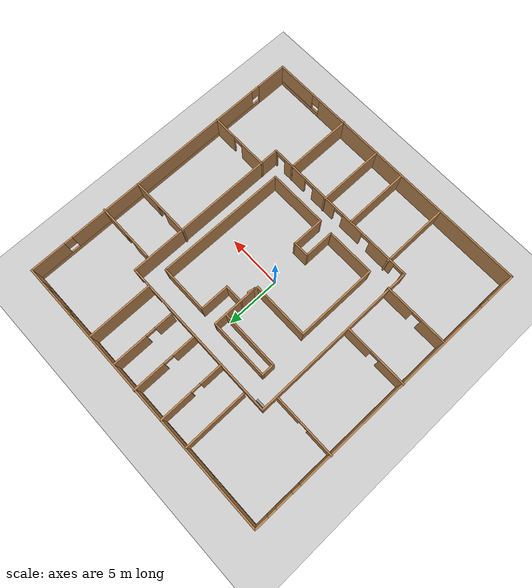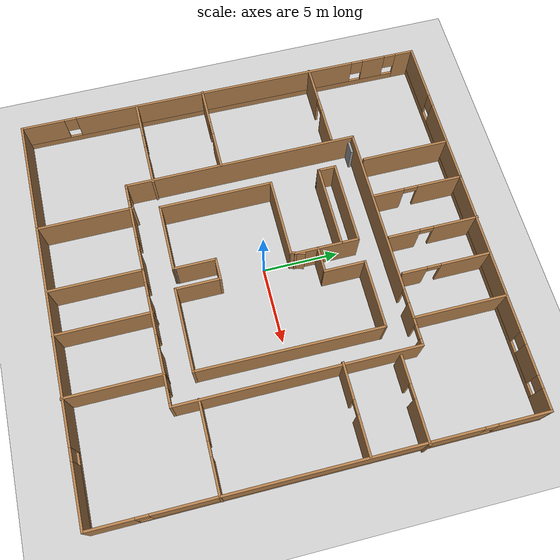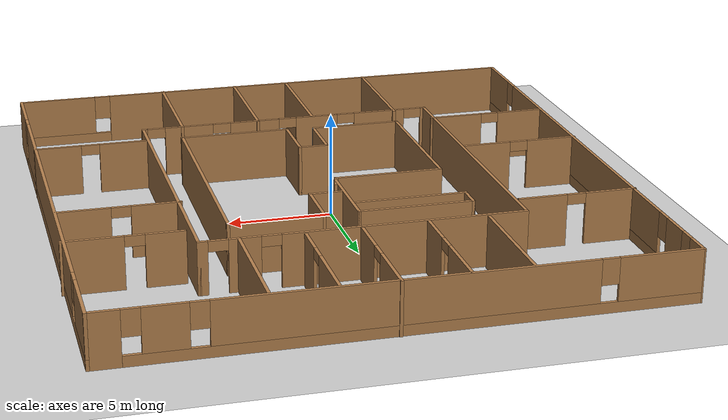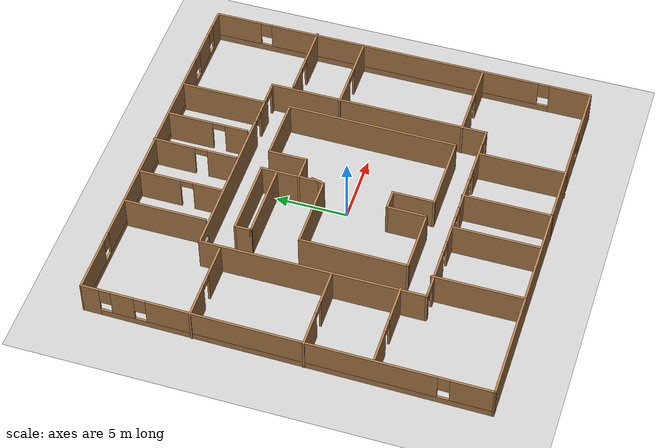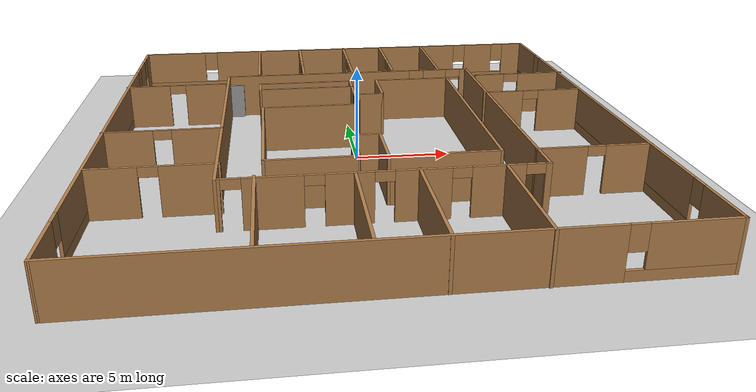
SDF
<sdf version="1.6">
 <world name="default">
  <light name="sun" type="directional">
   <pose>0 0 10 0 -0 0</pose>
   <diffuse>0.8 0.8 0.8 1</diffuse>
   <specular>0.1 0.1 0.1 1</specular>
   <attenuation>
    <range>1000</range>
    <constant>0.9</constant>
    <linear>0.01</linear>
    <quadratic>0.001</quadratic>
   </attenuation>
   <direction>-0.5 0.5 -1</direction>
  </light>
  <model name="ground_plane">
   <static>1</static>
   <link name="link">
    <collision name="collision">
     <geometry><plane><normal>0 0 1</normal><size>100 100</size></plane></geometry>
     <surface><friction><ode><mu>100</mu><mu2>50</mu2></ode></friction></surface>
    </collision>
    <visual name="visual">
     <cast_shadows>0</cast_shadows>
     <geometry><plane><normal>0 0 1</normal><size>100 100</size></plane></geometry>
     <material>
      <script><uri>file://media/materials/scripts/gazebo.material</uri><name>Gazebo/Grey</name></script>
     </material>
    </visual>
   </link>
  </model>
  <gravity>0 0 -9.8</gravity>
  <magnetic_field>6e-06 2.3e-05 -4.2e-05</magnetic_field>
  <atmosphere type="adiabatic"/>
  <physics name="default_physics" default="0" type="ode">
   <max_step_size>0.001</max_step_size>
   <real_time_factor>1</real_time_factor>
   <real_time_update_rate>1000</real_time_update_rate>
  </physics>
  <scene><ambient>0.4 0.4 0.4 1</ambient><background>0.7 0.7 0.7 1</background><shadows>1</shadows></scene>
  <spherical_coordinates>
   <surface_model>EARTH_WGS84</surface_model>
   <latitude_deg>0</latitude_deg>
   <longitude_deg>0</longitude_deg>
   <elevation>0</elevation>
   <heading_deg>0</heading_deg>
  </spherical_coordinates>
  <model name="5FloorOfNorthTower">
   <pose>0.315835 0.158332 0 0 -0 0</pose>
   <link name="Door_15">
    <collision name="Door_15_Collision">
     <geometry><box><size>0.9 0.17 2</size></box></geometry>
     <pose>0 0 1 0 -0 0</pose>
    </collision>
    <visual name="Door_15_Visual">
     <pose>0 0 1 0 -0 0</pose>
     <geometry><box><size>0.9 0.17 2</size></box></geometry>
     <material>
      <script><uri>file://media/materials/scripts/gazebo.material</uri><name>Gazebo/Grey</name></script>
     </material>
    </visual>
    <pose>-6.86912 7.45833 0 0 -0 0</pose>
   </link>
   <link name="Wall_0">
    <pose>-0.05873 -13.674 0 0 -0 0</pose>
    <visual name="Wall_0_Visual_0">
     <pose>-2.37069 0 1.25 0 -0 0</pose>
     <geometry><box><size>21.7586 0.15 2.5</size></box></geometry>
     <material>
      <script><uri>file://media/materials/scripts/gazebo.material</uri><name>Gazebo/Wood</name></script>
      <ambient>1 1 1 1</ambient>
     </material>
    </visual>
    <collision name="Wall_0_Collision_0">
     <geometry><box><size>21.7586 0.15 2.5</size></box></geometry>
     <pose>-2.37069 0 1.25 0 -0 0</pose>
    </collision>
    <visual name="Wall_0_Visual_1">
     <pose>10.8793 0 0.25 0 -0 0</pose>
     <geometry><box><size>4.74139 0.15 0.5</size></box></geometry>
     <material>
      <script><uri>file://media/materials/scripts/gazebo.material</uri><name>Gazebo/Wood</name></script>
      <ambient>1 1 1 1</ambient>
     </material>
    </visual>
    <collision name="Wall_0_Collision_1">
     <geometry><box><size>4.74139 0.15 0.5</size></box></geometry>
     <pose>10.8793 0 0.25 0 -0 0</pose>
    </collision>
    <visual name="Wall_0_Visual_2">
     <pose>11.2793 0 1.5 0 -0 0</pose>
     <geometry><box><size>3.94139 0.15 2</size></box></geometry>
     <material>
      <script><uri>file://media/materials/scripts/gazebo.material</uri><name>Gazebo/Wood</name></script>
      <ambient>1 1 1 1</ambient>
     </material>
    </visual>
    <collision name="Wall_0_Collision_2">
     <geometry><box><size>3.94139 0.15 2</size></box></geometry>
     <pose>11.2793 0 1.5 0 -0 0</pose>
    </collision>
    <visual name="Wall_0_Visual_3">
     <pose>8.90861 0 1.9 0 -0 0</pose>
     <geometry><box><size>0.8 0.15 1.2</size></box></geometry>
     <material>
      <script><uri>file://media/materials/scripts/gazebo.material</uri><name>Gazebo/Wood</name></script>
      <ambient>1 1 1 1</ambient>
     </material>
    </visual>
    <collision name="Wall_0_Collision_3">
     <geometry><box><size>0.8 0.15 1.2</size></box></geometry>
     <pose>8.90861 0 1.9 0 -0 0</pose>
    </collision>
   </link>
   <link name="Wall_11">
    <collision name="Wall_11_Collision">
     <geometry><box><size>5.5 0.15 2.5</size></box></geometry>
     <pose>0 0 1.25 0 -0 0</pose>
    </collision>
    <visual name="Wall_11_Visual">
     <pose>0 0 1.25 0 -0 0</pose>
     <geometry><box><size>5.5 0.15 2.5</size></box></geometry>
     <material>
      <script><uri>file://media/materials/scripts/gazebo.material</uri><name>Gazebo/Wood</name></script>
      <ambient>1 1 1 1</ambient>
     </material>
    </visual>
    <pose>-2.71207 5.92426 0 0 -0 0</pose>
   </link>
   <link name="Wall_12">
    <collision name="Wall_12_Collision">
     <geometry><box><size>4.25 0.15 2.5</size></box></geometry>
     <pose>0 0 1.25 0 -0 0</pose>
    </collision>
    <visual name="Wall_12_Visual">
     <pose>0 0 1.25 0 -0 0</pose>
     <geometry><box><size>4.25 0.15 2.5</size></box></geometry>
     <material>
      <script><uri>file://media/materials/scripts/gazebo.material</uri><name>Gazebo/Wood</name></script>
      <ambient>1 1 1 1</ambient>
     </material>
    </visual>
    <pose>-0.037071 3.87426 0 0 0 -1.5708</pose>
   </link>
   <link name="Wall_14">
    <collision name="Wall_14_Collision">
     <geometry><box><size>1.25 0.15 2.5</size></box></geometry>
     <pose>0 0 1.25 0 -0 0</pose>
    </collision>
    <visual name="Wall_14_Visual">
     <pose>0 0 1.25 0 -0 0</pose>
     <geometry><box><size>1.25 0.15 2.5</size></box></geometry>
     <material>
      <script><uri>file://media/materials/scripts/gazebo.material</uri><name>Gazebo/Wood</name></script>
      <ambient>1 1 1 1</ambient>
     </material>
    </visual>
    <pose>-5.38707 5.37426 0 0 0 -1.5708</pose>
   </link>
   <link name="Wall_15">
    <collision name="Wall_15_Collision">
     <geometry><box><size>5.5 0.15 2.5</size></box></geometry>
     <pose>0 0 1.25 0 -0 0</pose>
    </collision>
    <visual name="Wall_15_Visual">
     <pose>0 0 1.25 0 -0 0</pose>
     <geometry><box><size>5.5 0.15 2.5</size></box></geometry>
     <material>
      <script><uri>file://media/materials/scripts/gazebo.material</uri><name>Gazebo/Wood</name></script>
      <ambient>1 1 1 1</ambient>
     </material>
    </visual>
    <pose>-2.71207 4.82426 0 0 -0 0</pose>
   </link>
   <link name="Wall_17">
    <collision name="Wall_17_Collision">
     <geometry><box><size>1.75 0.15 2.5</size></box></geometry>
     <pose>0 0 1.25 0 -0 0</pose>
    </collision>
    <visual name="Wall_17_Visual">
     <pose>0 0 1.25 0 -0 0</pose>
     <geometry><box><size>1.75 0.15 2.5</size></box></geometry>
     <material>
      <script><uri>file://media/materials/scripts/gazebo.material</uri><name>Gazebo/Wood</name></script>
      <ambient>1 1 1 1</ambient>
     </material>
    </visual>
    <pose>0.759569 3.29084 0 0 -0 0</pose>
   </link>
   <link name="Wall_18">
    <collision name="Wall_18_Collision">
     <geometry><box><size>2.75 0.15 2.5</size></box></geometry>
     <pose>0 0 1.25 0 -0 0</pose>
    </collision>
    <visual name="Wall_18_Visual">
     <pose>0 0 1.25 0 -0 0</pose>
     <geometry><box><size>2.75 0.15 2.5</size></box></geometry>
     <material>
      <script><uri>file://media/materials/scripts/gazebo.material</uri><name>Gazebo/Wood</name></script>
      <ambient>1 1 1 1</ambient>
     </material>
    </visual>
    <pose>1.55957 4.59084 0 0 -0 1.5708</pose>
   </link>
   <link name="Wall_19">
    <collision name="Wall_19_Collision">
     <geometry><box><size>4.5 0.15 2.5</size></box></geometry>
     <pose>0 0 1.25 0 -0 0</pose>
    </collision>
    <visual name="Wall_19_Visual">
     <pose>0 0 1.25 0 -0 0</pose>
     <geometry><box><size>4.5 0.15 2.5</size></box></geometry>
     <material>
      <script><uri>file://media/materials/scripts/gazebo.material</uri><name>Gazebo/Wood</name></script>
      <ambient>1 1 1 1</ambient>
     </material>
    </visual>
    <pose>3.73457 5.89084 0 0 -0 0</pose>
   </link>
   <link name="Wall_2">
    <pose>13.1163 0.001016 0 0 -0 1.5708</pose>
    <visual name="Wall_2_Visual_0">
     <pose>-12.2586 0 1.25 0 -0 0</pose>
     <geometry><box><size>2.98285 0.15 2.5</size></box></geometry>
     <material>
      <script><uri>file://media/materials/scripts/gazebo.material</uri><name>Gazebo/Wood</name></script>
      <ambient>1 1 1 1</ambient>
     </material>
    </visual>
    <collision name="Wall_2_Collision_0">
     <geometry><box><size>2.98285 0.15 2.5</size></box></geometry>
     <pose>-12.2586 0 1.25 0 -0 0</pose>
    </collision>
    <visual name="Wall_2_Visual_1">
     <pose>1.49143 0 0.25 0 -0 0</pose>
     <geometry><box><size>24.5172 0.15 0.5</size></box></geometry>
     <material>
      <script><uri>file://media/materials/scripts/gazebo.material</uri><name>Gazebo/Wood</name></script>
      <ambient>1 1 1 1</ambient>
     </material>
    </visual>
    <collision name="Wall_2_Collision_1">
     <geometry><box><size>24.5172 0.15 0.5</size></box></geometry>
     <pose>1.49143 0 0.25 0 -0 0</pose>
    </collision>
    <visual name="Wall_2_Visual_2">
     <pose>-0.175881 0 1.5 0 -0 0</pose>
     <geometry><box><size>19.5825 0.15 2</size></box></geometry>
     <material>
      <script><uri>file://media/materials/scripts/gazebo.material</uri><name>Gazebo/Wood</name></script>
      <ambient>1 1 1 1</ambient>
     </material>
    </visual>
    <collision name="Wall_2_Collision_2">
     <geometry><box><size>19.5825 0.15 2</size></box></geometry>
     <pose>-0.175881 0 1.5 0 -0 0</pose>
    </collision>
    <visual name="Wall_2_Visual_3">
     <pose>12.0827 0 1.5 0 -0 0</pose>
     <geometry><box><size>3.33461 0.15 2</size></box></geometry>
     <material>
      <script><uri>file://media/materials/scripts/gazebo.material</uri><name>Gazebo/Wood</name></script>
      <ambient>1 1 1 1</ambient>
     </material>
    </visual>
    <collision name="Wall_2_Collision_3">
     <geometry><box><size>3.33461 0.15 2</size></box></geometry>
     <pose>12.0827 0 1.5 0 -0 0</pose>
    </collision>
    <visual name="Wall_2_Visual_4">
     <pose>-10.3672 0 1.9 0 -0 0</pose>
     <geometry><box><size>0.8 0.15 1.2</size></box></geometry>
     <material>
      <script><uri>file://media/materials/scripts/gazebo.material</uri><name>Gazebo/Wood</name></script>
      <ambient>1 1 1 1</ambient>
     </material>
    </visual>
    <collision name="Wall_2_Collision_4">
     <geometry><box><size>0.8 0.15 1.2</size></box></geometry>
     <pose>-10.3672 0 1.9 0 -0 0</pose>
    </collision>
    <visual name="Wall_2_Visual_5">
     <pose>10.0154 0 1.9 0 -0 0</pose>
     <geometry><box><size>0.8 0.15 1.2</size></box></geometry>
     <material>
      <script><uri>file://media/materials/scripts/gazebo.material</uri><name>Gazebo/Wood</name></script>
      <ambient>1 1 1 1</ambient>
     </material>
    </visual>
    <collision name="Wall_2_Collision_5">
     <geometry><box><size>0.8 0.15 1.2</size></box></geometry>
     <pose>10.0154 0 1.9 0 -0 0</pose>
    </collision>
   </link>
   <link name="Wall_20">
    <collision name="Wall_20_Collision">
     <geometry><box><size>12.0011 0.15 2.5</size></box></geometry>
     <pose>0 0 1.25 0 -0 0</pose>
    </collision>
    <visual name="Wall_20_Visual">
     <pose>0 0 1.25 0 -0 0</pose>
     <geometry><box><size>12.0011 0.15 2.5</size></box></geometry>
     <material>
      <script><uri>file://media/materials/scripts/gazebo.material</uri><name>Gazebo/Wood</name></script>
      <ambient>1 1 1 1</ambient>
     </material>
    </visual>
    <pose>5.86957 -0.034162 0 0 0 -1.57755</pose>
   </link>
   <link name="Wall_22">
    <collision name="Wall_22_Collision">
     <geometry><box><size>5.5 0.15 2.5</size></box></geometry>
     <pose>0 0 1.25 0 -0 0</pose>
    </collision>
    <visual name="Wall_22_Visual">
     <pose>0 0 1.25 0 -0 0</pose>
     <geometry><box><size>5.5 0.15 2.5</size></box></geometry>
     <material>
      <script><uri>file://media/materials/scripts/gazebo.material</uri><name>Gazebo/Wood</name></script>
      <ambient>1 1 1 1</ambient>
     </material>
    </visual>
    <pose>3.16457 -5.95916 0 0 -0 3.14159</pose>
   </link>
   <link name="Wall_24">
    <collision name="Wall_24_Collision">
     <geometry><box><size>3 0.15 2.5</size></box></geometry>
     <pose>0 0 1.25 0 -0 0</pose>
    </collision>
    <visual name="Wall_24_Visual">
     <pose>0 0 1.25 0 -0 0</pose>
     <geometry><box><size>3 0.15 2.5</size></box></geometry>
     <material>
      <script><uri>file://media/materials/scripts/gazebo.material</uri><name>Gazebo/Wood</name></script>
      <ambient>1 1 1 1</ambient>
     </material>
    </visual>
    <pose>0.489569 -4.53416 0 0 -0 1.5708</pose>
   </link>
   <link name="Wall_25">
    <collision name="Wall_25_Collision">
     <geometry><box><size>1.5 0.15 2.5</size></box></geometry>
     <pose>0 0 1.25 0 -0 0</pose>
    </collision>
    <visual name="Wall_25_Visual">
     <pose>0 0 1.25 0 -0 0</pose>
     <geometry><box><size>1.5 0.15 2.5</size></box></geometry>
     <material>
      <script><uri>file://media/materials/scripts/gazebo.material</uri><name>Gazebo/Wood</name></script>
      <ambient>1 1 1 1</ambient>
     </material>
    </visual>
    <pose>-0.185431 -3.10916 0 0 -0 3.14159</pose>
   </link>
   <link name="Wall_26">
    <collision name="Wall_26_Collision">
     <geometry><box><size>2.75 0.15 2.5</size></box></geometry>
     <pose>0 0 1.25 0 -0 0</pose>
    </collision>
    <visual name="Wall_26_Visual">
     <pose>0 0 1.25 0 -0 0</pose>
     <geometry><box><size>2.75 0.15 2.5</size></box></geometry>
     <material>
      <script><uri>file://media/materials/scripts/gazebo.material</uri><name>Gazebo/Wood</name></script>
      <ambient>1 1 1 1</ambient>
     </material>
    </visual>
    <pose>-0.860431 -4.40916 0 0 0 -1.5708</pose>
   </link>
   <link name="Wall_27">
    <collision name="Wall_27_Collision">
     <geometry><box><size>0.25 0.15 2.5</size></box></geometry>
     <pose>0 0 1.25 0 -0 0</pose>
    </collision>
    <visual name="Wall_27_Visual">
     <pose>0 0 1.25 0 -0 0</pose>
     <geometry><box><size>0.25 0.15 2.5</size></box></geometry>
     <material>
      <script><uri>file://media/materials/scripts/gazebo.material</uri><name>Gazebo/Grey</name></script>
      <ambient>1 1 1 1</ambient>
     </material>
    </visual>
    <pose>-0.873372 -5.75746 0 0 0 -1.8326</pose>
   </link>
   <link name="Wall_28">
    <collision name="Wall_28_Collision">
     <geometry><box><size>4.5 0.15 2.5</size></box></geometry>
     <pose>0 0 1.25 0 -0 0</pose>
    </collision>
    <visual name="Wall_28_Visual">
     <pose>0 0 1.25 0 -0 0</pose>
     <geometry><box><size>4.5 0.15 2.5</size></box></geometry>
     <material>
      <script><uri>file://media/materials/scripts/gazebo.material</uri><name>Gazebo/Wood</name></script>
      <ambient>1 1 1 1</ambient>
     </material>
    </visual>
    <pose>-3.06131 -5.80576 0 0 -0 3.14159</pose>
   </link>
   <link name="Wall_29">
    <collision name="Wall_29_Collision">
     <geometry><box><size>7.5 0.15 2.5</size></box></geometry>
     <pose>0 0 1.25 0 -0 0</pose>
    </collision>
    <visual name="Wall_29_Visual">
     <pose>0 0 1.25 0 -0 0</pose>
     <geometry><box><size>7.5 0.15 2.5</size></box></geometry>
     <material>
      <script><uri>file://media/materials/scripts/gazebo.material</uri><name>Gazebo/Wood</name></script>
      <ambient>1 1 1 1</ambient>
     </material>
    </visual>
    <pose>-5.23631 -2.13076 0 0 -0 1.5708</pose>
   </link>
   <link name="Wall_3">
    <pose>0.06627 13.676 0 0 -0 3.14159</pose>
    <visual name="Wall_3_Visual_0">
     <pose>-12.4029 0 1.25 0 -0 0</pose>
     <geometry><box><size>1.44419 0.15 2.5</size></box></geometry>
     <material>
      <script><uri>file://media/materials/scripts/gazebo.material</uri><name>Gazebo/Wood</name></script>
      <ambient>1 1 1 1</ambient>
     </material>
    </visual>
    <collision name="Wall_3_Collision_0">
     <geometry><box><size>1.44419 0.15 2.5</size></box></geometry>
     <pose>-12.4029 0 1.25 0 -0 0</pose>
    </collision>
    <visual name="Wall_3_Visual_1">
     <pose>0.722096 0 0.25 0 -0 0</pose>
     <geometry><box><size>24.8058 0.15 0.5</size></box></geometry>
     <material>
      <script><uri>file://media/materials/scripts/gazebo.material</uri><name>Gazebo/Wood</name></script>
      <ambient>1 1 1 1</ambient>
     </material>
    </visual>
    <collision name="Wall_3_Collision_1">
     <geometry><box><size>24.8058 0.15 0.5</size></box></geometry>
     <pose>0.722096 0 0.25 0 -0 0</pose>
    </collision>
    <visual name="Wall_3_Visual_2">
     <pose>-9.90835 0 1.5 0 -0 0</pose>
     <geometry><box><size>1.94491 0.15 2</size></box></geometry>
     <material>
      <script><uri>file://media/materials/scripts/gazebo.material</uri><name>Gazebo/Wood</name></script>
      <ambient>1 1 1 1</ambient>
     </material>
    </visual>
    <collision name="Wall_3_Collision_2">
     <geometry><box><size>1.94491 0.15 2</size></box></geometry>
     <pose>-9.90835 0 1.5 0 -0 0</pose>
    </collision>
    <visual name="Wall_3_Visual_3">
     <pose>0.153155 0 1.5 0 -0 0</pose>
     <geometry><box><size>16.5781 0.15 2</size></box></geometry>
     <material>
      <script><uri>file://media/materials/scripts/gazebo.material</uri><name>Gazebo/Wood</name></script>
      <ambient>1 1 1 1</ambient>
     </material>
    </visual>
    <collision name="Wall_3_Collision_3">
     <geometry><box><size>16.5781 0.15 2</size></box></geometry>
     <pose>0.153155 0 1.5 0 -0 0</pose>
    </collision>
    <visual name="Wall_3_Visual_4">
     <pose>11.1836 0 1.5 0 -0 0</pose>
     <geometry><box><size>3.88279 0.15 2</size></box></geometry>
     <material>
      <script><uri>file://media/materials/scripts/gazebo.material</uri><name>Gazebo/Wood</name></script>
      <ambient>1 1 1 1</ambient>
     </material>
    </visual>
    <collision name="Wall_3_Collision_4">
     <geometry><box><size>3.88279 0.15 2</size></box></geometry>
     <pose>11.1836 0 1.5 0 -0 0</pose>
    </collision>
    <visual name="Wall_3_Visual_5">
     <pose>-11.2808 0 1.9 0 -0 0</pose>
     <geometry><box><size>0.8 0.15 1.2</size></box></geometry>
     <material>
      <script><uri>file://media/materials/scripts/gazebo.material</uri><name>Gazebo/Wood</name></script>
      <ambient>1 1 1 1</ambient>
     </material>
    </visual>
    <collision name="Wall_3_Collision_5">
     <geometry><box><size>0.8 0.15 1.2</size></box></geometry>
     <pose>-11.2808 0 1.9 0 -0 0</pose>
    </collision>
    <visual name="Wall_3_Visual_6">
     <pose>-8.5359 0 1.9 0 -0 0</pose>
     <geometry><box><size>0.8 0.15 1.2</size></box></geometry>
     <material>
      <script><uri>file://media/materials/scripts/gazebo.material</uri><name>Gazebo/Wood</name></script>
      <ambient>1 1 1 1</ambient>
     </material>
    </visual>
    <collision name="Wall_3_Collision_6">
     <geometry><box><size>0.8 0.15 1.2</size></box></geometry>
     <pose>-8.5359 0 1.9 0 -0 0</pose>
    </collision>
    <visual name="Wall_3_Visual_7">
     <pose>8.84221 0 1.9 0 -0 0</pose>
     <geometry><box><size>0.8 0.15 1.2</size></box></geometry>
     <material>
      <script><uri>file://media/materials/scripts/gazebo.material</uri><name>Gazebo/Wood</name></script>
      <ambient>1 1 1 1</ambient>
     </material>
    </visual>
    <collision name="Wall_3_Collision_7">
     <geometry><box><size>0.8 0.15 1.2</size></box></geometry>
     <pose>8.84221 0 1.9 0 -0 0</pose>
    </collision>
   </link>
   <link name="Wall_30">
    <collision name="Wall_30_Collision">
     <geometry><box><size>5.25 0.15 2.5</size></box></geometry>
     <pose>0 0 1.25 0 -0 0</pose>
    </collision>
    <visual name="Wall_30_Visual">
     <pose>0 0 1.25 0 -0 0</pose>
     <geometry><box><size>5.25 0.15 2.5</size></box></geometry>
     <material>
      <script><uri>file://media/materials/scripts/gazebo.material</uri><name>Gazebo/Wood</name></script>
      <ambient>1 1 1 1</ambient>
     </material>
    </visual>
    <pose>-2.68631 1.54425 0 0 -0 0</pose>
   </link>
   <link name="Wall_31">
    <collision name="Wall_31_Collision">
     <geometry><box><size>1 0.15 2.5</size></box></geometry>
     <pose>0 0 1.25 0 -0 0</pose>
    </collision>
    <visual name="Wall_31_Visual">
     <pose>0 0 1.25 0 -0 0</pose>
     <geometry><box><size>1 0.15 2.5</size></box></geometry>
     <material>
      <script><uri>file://media/materials/scripts/gazebo.material</uri><name>Gazebo/Wood</name></script>
      <ambient>1 1 1 1</ambient>
     </material>
    </visual>
    <pose>-0.026315 1.95476 0 0 -0 1.309</pose>
   </link>
   <link name="Wall_33">
    <pose>-10.3022 6.24599 0 0 -0 0</pose>
    <visual name="Wall_33_Visual_0">
     <pose>-1.63035 0 1.25 0 -0 0</pose>
     <geometry><box><size>2.48931 0.15 2.5</size></box></geometry>
     <material>
      <script><uri>file://media/materials/scripts/gazebo.material</uri><name>Gazebo/Wood</name></script>
      <ambient>1 1 1 1</ambient>
     </material>
    </visual>
    <collision name="Wall_33_Collision_0">
     <geometry><box><size>2.48931 0.15 2.5</size></box></geometry>
     <pose>-1.63035 0 1.25 0 -0 0</pose>
    </collision>
    <visual name="Wall_33_Visual_1">
     <pose>1.69465 0 1.25 0 -0 0</pose>
     <geometry><box><size>2.36069 0.15 2.5</size></box></geometry>
     <material>
      <script><uri>file://media/materials/scripts/gazebo.material</uri><name>Gazebo/Wood</name></script>
      <ambient>1 1 1 1</ambient>
     </material>
    </visual>
    <collision name="Wall_33_Collision_1">
     <geometry><box><size>2.36069 0.15 2.5</size></box></geometry>
     <pose>1.69465 0 1.25 0 -0 0</pose>
    </collision>
    <visual name="Wall_33_Visual_2">
     <pose>0.064306 0 2.25 0 -0 0</pose>
     <geometry><box><size>0.9 0.15 0.5</size></box></geometry>
     <material>
      <script><uri>file://media/materials/scripts/gazebo.material</uri><name>Gazebo/Wood</name></script>
      <ambient>1 1 1 1</ambient>
     </material>
    </visual>
    <collision name="Wall_33_Collision_2">
     <geometry><box><size>0.9 0.15 0.5</size></box></geometry>
     <pose>0.064306 0 2.25 0 -0 0</pose>
    </collision>
   </link>
   <link name="Wall_35">
    <collision name="Wall_35_Collision">
     <geometry><box><size>5.75 0.15 2.5</size></box></geometry>
     <pose>0 0 1.25 0 -0 0</pose>
    </collision>
    <visual name="Wall_35_Visual">
     <pose>0 0 1.25 0 -0 0</pose>
     <geometry><box><size>5.75 0.15 2.5</size></box></geometry>
     <material>
      <script><uri>file://media/materials/scripts/gazebo.material</uri><name>Gazebo/Wood</name></script>
      <ambient>1 1 1 1</ambient>
     </material>
    </visual>
    <pose>-5.45606 10.7685 0 0 0 -1.5708</pose>
   </link>
   <link name="Wall_37">
    <pose>-2.70509 10.7244 0 0 0 -1.5708</pose>
    <visual name="Wall_37_Visual_0">
     <pose>-1.49563 0 1.25 0 -0 0</pose>
     <geometry><box><size>3.00875 0.15 2.5</size></box></geometry>
     <material>
      <script><uri>file://media/materials/scripts/gazebo.material</uri><name>Gazebo/Wood</name></script>
      <ambient>1 1 1 1</ambient>
     </material>
    </visual>
    <collision name="Wall_37_Collision_0">
     <geometry><box><size>3.00875 0.15 2.5</size></box></geometry>
     <pose>-1.49563 0 1.25 0 -0 0</pose>
    </collision>
    <visual name="Wall_37_Visual_1">
     <pose>1.95437 0 1.25 0 -0 0</pose>
     <geometry><box><size>2.09125 0.15 2.5</size></box></geometry>
     <material>
      <script><uri>file://media/materials/scripts/gazebo.material</uri><name>Gazebo/Wood</name></script>
      <ambient>1 1 1 1</ambient>
     </material>
    </visual>
    <collision name="Wall_37_Collision_1">
     <geometry><box><size>2.09125 0.15 2.5</size></box></geometry>
     <pose>1.95437 0 1.25 0 -0 0</pose>
    </collision>
    <visual name="Wall_37_Visual_2">
     <pose>0.458748 0 2.25 0 -0 0</pose>
     <geometry><box><size>0.9 0.15 0.5</size></box></geometry>
     <material>
      <script><uri>file://media/materials/scripts/gazebo.material</uri><name>Gazebo/Wood</name></script>
      <ambient>1 1 1 1</ambient>
     </material>
    </visual>
    <collision name="Wall_37_Collision_2">
     <geometry><box><size>0.9 0.15 0.5</size></box></geometry>
     <pose>0.458748 0 2.25 0 -0 0</pose>
    </collision>
   </link>
   <link name="Wall_39">
    <pose>0.329083 10.8053 0 0 0 -1.5708</pose>
    <visual name="Wall_39_Visual_0">
     <pose>-1.50196 0 1.25 0 -0 0</pose>
     <geometry><box><size>2.99608 0.15 2.5</size></box></geometry>
     <material>
      <script><uri>file://media/materials/scripts/gazebo.material</uri><name>Gazebo/Wood</name></script>
      <ambient>1 1 1 1</ambient>
     </material>
    </visual>
    <collision name="Wall_39_Collision_0">
     <geometry><box><size>2.99608 0.15 2.5</size></box></geometry>
     <pose>-1.50196 0 1.25 0 -0 0</pose>
    </collision>
    <visual name="Wall_39_Visual_1">
     <pose>1.94804 0 1.25 0 -0 0</pose>
     <geometry><box><size>2.10392 0.15 2.5</size></box></geometry>
     <material>
      <script><uri>file://media/materials/scripts/gazebo.material</uri><name>Gazebo/Wood</name></script>
      <ambient>1 1 1 1</ambient>
     </material>
    </visual>
    <collision name="Wall_39_Collision_1">
     <geometry><box><size>2.10392 0.15 2.5</size></box></geometry>
     <pose>1.94804 0 1.25 0 -0 0</pose>
    </collision>
    <visual name="Wall_39_Visual_2">
     <pose>0.446083 0 2.25 0 -0 0</pose>
     <geometry><box><size>0.9 0.15 0.5</size></box></geometry>
     <material>
      <script><uri>file://media/materials/scripts/gazebo.material</uri><name>Gazebo/Wood</name></script>
      <ambient>1 1 1 1</ambient>
     </material>
    </visual>
    <collision name="Wall_39_Collision_2">
     <geometry><box><size>0.9 0.15 0.5</size></box></geometry>
     <pose>0.446083 0 2.25 0 -0 0</pose>
    </collision>
   </link>
   <link name="Wall_4">
    <pose>-13.1087 0.001016 0 0 0 -1.57994</pose>
    <visual name="Wall_4_Visual_0">
     <pose>-13.1068 0 1.25 0 -0 0</pose>
     <geometry><box><size>1.2875 0.15 2.5</size></box></geometry>
     <material>
      <script><uri>file://media/materials/scripts/gazebo.material</uri><name>Gazebo/Wood</name></script>
      <ambient>1 1 1 1</ambient>
     </material>
    </visual>
    <collision name="Wall_4_Collision_0">
     <geometry><box><size>1.2875 0.15 2.5</size></box></geometry>
     <pose>-13.1068 0 1.25 0 -0 0</pose>
    </collision>
    <visual name="Wall_4_Visual_1">
     <pose>0.643751 0 0.25 0 -0 0</pose>
     <geometry><box><size>26.2136 0.15 0.5</size></box></geometry>
     <material>
      <script><uri>file://media/materials/scripts/gazebo.material</uri><name>Gazebo/Wood</name></script>
      <ambient>1 1 1 1</ambient>
     </material>
    </visual>
    <collision name="Wall_4_Collision_1">
     <geometry><box><size>26.2136 0.15 0.5</size></box></geometry>
     <pose>0.643751 0 0.25 0 -0 0</pose>
    </collision>
    <visual name="Wall_4_Visual_2">
     <pose>-10.8757 0 1.5 0 -0 0</pose>
     <geometry><box><size>1.57466 0.15 2</size></box></geometry>
     <material>
      <script><uri>file://media/materials/scripts/gazebo.material</uri><name>Gazebo/Wood</name></script>
      <ambient>1 1 1 1</ambient>
     </material>
    </visual>
    <collision name="Wall_4_Collision_2">
     <geometry><box><size>1.57466 0.15 2</size></box></geometry>
     <pose>-10.8757 0 1.5 0 -0 0</pose>
    </collision>
    <visual name="Wall_4_Visual_3">
     <pose>0.370791 0 1.5 0 -0 0</pose>
     <geometry><box><size>19.3184 0.15 2</size></box></geometry>
     <material>
      <script><uri>file://media/materials/scripts/gazebo.material</uri><name>Gazebo/Wood</name></script>
      <ambient>1 1 1 1</ambient>
     </material>
    </visual>
    <collision name="Wall_4_Collision_3">
     <geometry><box><size>19.3184 0.15 2</size></box></geometry>
     <pose>0.370791 0 1.5 0 -0 0</pose>
    </collision>
    <visual name="Wall_4_Visual_4">
     <pose>12.2903 0 1.5 0 -0 0</pose>
     <geometry><box><size>2.92058 0.15 2</size></box></geometry>
     <material>
      <script><uri>file://media/materials/scripts/gazebo.material</uri><name>Gazebo/Wood</name></script>
      <ambient>1 1 1 1</ambient>
     </material>
    </visual>
    <collision name="Wall_4_Collision_4">
     <geometry><box><size>2.92058 0.15 2</size></box></geometry>
     <pose>12.2903 0 1.5 0 -0 0</pose>
    </collision>
    <visual name="Wall_4_Visual_5">
     <pose>-12.0631 0 1.9 0 -0 0</pose>
     <geometry><box><size>0.8 0.15 1.2</size></box></geometry>
     <material>
      <script><uri>file://media/materials/scripts/gazebo.material</uri><name>Gazebo/Wood</name></script>
      <ambient>1 1 1 1</ambient>
     </material>
    </visual>
    <collision name="Wall_4_Collision_5">
     <geometry><box><size>0.8 0.15 1.2</size></box></geometry>
     <pose>-12.0631 0 1.9 0 -0 0</pose>
    </collision>
    <visual name="Wall_4_Visual_6">
     <pose>-9.68841 0 1.9 0 -0 0</pose>
     <geometry><box><size>0.8 0.15 1.2</size></box></geometry>
     <material>
      <script><uri>file://media/materials/scripts/gazebo.material</uri><name>Gazebo/Wood</name></script>
      <ambient>1 1 1 1</ambient>
     </material>
    </visual>
    <collision name="Wall_4_Collision_6">
     <geometry><box><size>0.8 0.15 1.2</size></box></geometry>
     <pose>-9.68841 0 1.9 0 -0 0</pose>
    </collision>
    <visual name="Wall_4_Visual_7">
     <pose>10.43 0 1.9 0 -0 0</pose>
     <geometry><box><size>0.8 0.15 1.2</size></box></geometry>
     <material>
      <script><uri>file://media/materials/scripts/gazebo.material</uri><name>Gazebo/Wood</name></script>
      <ambient>1 1 1 1</ambient>
     </material>
    </visual>
    <collision name="Wall_4_Collision_7">
     <geometry><box><size>0.8 0.15 1.2</size></box></geometry>
     <pose>10.43 0 1.9 0 -0 0</pose>
    </collision>
   </link>
   <link name="Wall_41">
    <pose>2.87778 10.7685 0 0 0 -1.5708</pose>
    <visual name="Wall_41_Visual_0">
     <pose>-1.27072 0 1.25 0 -0 0</pose>
     <geometry><box><size>3.20857 0.15 2.5</size></box></geometry>
     <material>
      <script><uri>file://media/materials/scripts/gazebo.material</uri><name>Gazebo/Wood</name></script>
      <ambient>1 1 1 1</ambient>
     </material>
    </visual>
    <collision name="Wall_41_Collision_0">
     <geometry><box><size>3.20857 0.15 2.5</size></box></geometry>
     <pose>-1.27072 0 1.25 0 -0 0</pose>
    </collision>
    <visual name="Wall_41_Visual_1">
     <pose>2.05428 0 1.25 0 -0 0</pose>
     <geometry><box><size>1.64143 0.15 2.5</size></box></geometry>
     <material>
      <script><uri>file://media/materials/scripts/gazebo.material</uri><name>Gazebo/Wood</name></script>
      <ambient>1 1 1 1</ambient>
     </material>
    </visual>
    <collision name="Wall_41_Collision_1">
     <geometry><box><size>1.64143 0.15 2.5</size></box></geometry>
     <pose>2.05428 0 1.25 0 -0 0</pose>
    </collision>
    <visual name="Wall_41_Visual_2">
     <pose>0.783566 0 2.25 0 -0 0</pose>
     <geometry><box><size>0.9 0.15 0.5</size></box></geometry>
     <material>
      <script><uri>file://media/materials/scripts/gazebo.material</uri><name>Gazebo/Wood</name></script>
      <ambient>1 1 1 1</ambient>
     </material>
    </visual>
    <collision name="Wall_41_Collision_2">
     <geometry><box><size>0.9 0.15 0.5</size></box></geometry>
     <pose>0.783566 0 2.25 0 -0 0</pose>
    </collision>
   </link>
   <link name="Wall_43">
    <collision name="Wall_43_Collision">
     <geometry><box><size>6 0.15 2.5</size></box></geometry>
     <pose>0 0 1.25 0 -0 0</pose>
    </collision>
    <visual name="Wall_43_Visual">
     <pose>0 0 1.25 0 -0 0</pose>
     <geometry><box><size>6 0.15 2.5</size></box></geometry>
     <material>
      <script><uri>file://media/materials/scripts/gazebo.material</uri><name>Gazebo/Wood</name></script>
      <ambient>1 1 1 1</ambient>
     </material>
    </visual>
    <pose>5.79059 10.6435 0 0 0 -1.5708</pose>
   </link>
   <link name="Wall_45">
    <pose>10.5594 6.24599 0 0 -0 3.14159</pose>
    <visual name="Wall_45_Visual_0">
     <pose>-1.35438 0 1.25 0 -0 0</pose>
     <geometry><box><size>2.79124 0.15 2.5</size></box></geometry>
     <material>
      <script><uri>file://media/materials/scripts/gazebo.material</uri><name>Gazebo/Wood</name></script>
      <ambient>1 1 1 1</ambient>
     </material>
    </visual>
    <collision name="Wall_45_Collision_0">
     <geometry><box><size>2.79124 0.15 2.5</size></box></geometry>
     <pose>-1.35438 0 1.25 0 -0 0</pose>
    </collision>
    <visual name="Wall_45_Visual_1">
     <pose>1.84562 0 1.25 0 -0 0</pose>
     <geometry><box><size>1.80876 0.15 2.5</size></box></geometry>
     <material>
      <script><uri>file://media/materials/scripts/gazebo.material</uri><name>Gazebo/Wood</name></script>
      <ambient>1 1 1 1</ambient>
     </material>
    </visual>
    <collision name="Wall_45_Collision_1">
     <geometry><box><size>1.80876 0.15 2.5</size></box></geometry>
     <pose>1.84562 0 1.25 0 -0 0</pose>
    </collision>
    <visual name="Wall_45_Visual_2">
     <pose>0.491238 0 2.25 0 -0 0</pose>
     <geometry><box><size>0.9 0.15 0.5</size></box></geometry>
     <material>
      <script><uri>file://media/materials/scripts/gazebo.material</uri><name>Gazebo/Wood</name></script>
      <ambient>1 1 1 1</ambient>
     </material>
    </visual>
    <collision name="Wall_45_Collision_2">
     <geometry><box><size>0.9 0.15 0.5</size></box></geometry>
     <pose>0.491238 0 2.25 0 -0 0</pose>
    </collision>
   </link>
   <link name="Wall_47">
    <pose>10.2493 2.76681 0 0 -0 0</pose>
    <visual name="Wall_47_Visual_0">
     <pose>-1.70626 0 1.25 0 -0 0</pose>
     <geometry><box><size>2.33749 0.15 2.5</size></box></geometry>
     <material>
      <script><uri>file://media/materials/scripts/gazebo.material</uri><name>Gazebo/Wood</name></script>
      <ambient>1 1 1 1</ambient>
     </material>
    </visual>
    <collision name="Wall_47_Collision_0">
     <geometry><box><size>2.33749 0.15 2.5</size></box></geometry>
     <pose>-1.70626 0 1.25 0 -0 0</pose>
    </collision>
    <visual name="Wall_47_Visual_1">
     <pose>1.61874 0 1.25 0 -0 0</pose>
     <geometry><box><size>2.51251 0.15 2.5</size></box></geometry>
     <material>
      <script><uri>file://media/materials/scripts/gazebo.material</uri><name>Gazebo/Wood</name></script>
      <ambient>1 1 1 1</ambient>
     </material>
    </visual>
    <collision name="Wall_47_Collision_1">
     <geometry><box><size>2.51251 0.15 2.5</size></box></geometry>
     <pose>1.61874 0 1.25 0 -0 0</pose>
    </collision>
    <visual name="Wall_47_Visual_2">
     <pose>-0.087513 0 2.25 0 -0 0</pose>
     <geometry><box><size>0.9 0.15 0.5</size></box></geometry>
     <material>
      <script><uri>file://media/materials/scripts/gazebo.material</uri><name>Gazebo/Wood</name></script>
      <ambient>1 1 1 1</ambient>
     </material>
    </visual>
    <collision name="Wall_47_Collision_2">
     <geometry><box><size>0.9 0.15 0.5</size></box></geometry>
     <pose>-0.087513 0 2.25 0 -0 0</pose>
    </collision>
   </link>
   <link name="Wall_49">
    <pose>10.3302 -5.97159 0 0 -0 0</pose>
    <visual name="Wall_49_Visual_0">
     <pose>-1.60635 0 1.25 0 -0 0</pose>
     <geometry><box><size>2.5373 0.15 2.5</size></box></geometry>
     <material>
      <script><uri>file://media/materials/scripts/gazebo.material</uri><name>Gazebo/Wood</name></script>
      <ambient>1 1 1 1</ambient>
     </material>
    </visual>
    <collision name="Wall_49_Collision_0">
     <geometry><box><size>2.5373 0.15 2.5</size></box></geometry>
     <pose>-1.60635 0 1.25 0 -0 0</pose>
    </collision>
    <visual name="Wall_49_Visual_1">
     <pose>1.71865 0 1.25 0 -0 0</pose>
     <geometry><box><size>2.3127 0.15 2.5</size></box></geometry>
     <material>
      <script><uri>file://media/materials/scripts/gazebo.material</uri><name>Gazebo/Wood</name></script>
      <ambient>1 1 1 1</ambient>
     </material>
    </visual>
    <collision name="Wall_49_Collision_1">
     <geometry><box><size>2.3127 0.15 2.5</size></box></geometry>
     <pose>1.71865 0 1.25 0 -0 0</pose>
    </collision>
    <visual name="Wall_49_Visual_2">
     <pose>0.112304 0 2.25 0 -0 0</pose>
     <geometry><box><size>0.9 0.15 0.5</size></box></geometry>
     <material>
      <script><uri>file://media/materials/scripts/gazebo.material</uri><name>Gazebo/Wood</name></script>
      <ambient>1 1 1 1</ambient>
     </material>
    </visual>
    <collision name="Wall_49_Collision_2">
     <geometry><box><size>0.9 0.15 0.5</size></box></geometry>
     <pose>0.112304 0 2.25 0 -0 0</pose>
    </collision>
   </link>
   <link name="Wall_51">
    <collision name="Wall_51_Collision">
     <geometry><box><size>6.25 0.15 2.5</size></box></geometry>
     <pose>0 0 1.25 0 -0 0</pose>
    </collision>
    <visual name="Wall_51_Visual">
     <pose>0 0 1.25 0 -0 0</pose>
     <geometry><box><size>6.25 0.15 2.5</size></box></geometry>
     <material>
      <script><uri>file://media/materials/scripts/gazebo.material</uri><name>Gazebo/Wood</name></script>
      <ambient>1 1 1 1</ambient>
     </material>
    </visual>
    <pose>5.54785 -10.6803 0 0 0 -1.5708</pose>
   </link>
   <link name="Wall_53">
    <collision name="Wall_53_Collision">
     <geometry><box><size>6.25 0.15 2.5</size></box></geometry>
     <pose>0 0 1.25 0 -0 0</pose>
    </collision>
    <visual name="Wall_53_Visual">
     <pose>0 0 1.25 0 -0 0</pose>
     <geometry><box><size>6.25 0.15 2.5</size></box></geometry>
     <material>
      <script><uri>file://media/materials/scripts/gazebo.material</uri><name>Gazebo/Wood</name></script>
      <ambient>1 1 1 1</ambient>
     </material>
    </visual>
    <pose>1.62366 -10.6398 0 0 0 -1.5708</pose>
   </link>
   <link name="Wall_55">
    <collision name="Wall_55_Collision">
     <geometry><box><size>6 0.15 2.5</size></box></geometry>
     <pose>0 0 1.25 0 -0 0</pose>
    </collision>
    <visual name="Wall_55_Visual">
     <pose>0 0 1.25 0 -0 0</pose>
     <geometry><box><size>6 0.15 2.5</size></box></geometry>
     <material>
      <script><uri>file://media/materials/scripts/gazebo.material</uri><name>Gazebo/Wood</name></script>
      <ambient>1 1 1 1</ambient>
     </material>
    </visual>
    <pose>-1.24869 -10.6362 0 0 0 -1.5708</pose>
   </link>
   <link name="Wall_57">
    <collision name="Wall_57_Collision">
     <geometry><box><size>6.25 0.15 2.5</size></box></geometry>
     <pose>0 0 1.25 0 -0 0</pose>
    </collision>
    <visual name="Wall_57_Visual">
     <pose>0 0 1.25 0 -0 0</pose>
     <geometry><box><size>6.25 0.15 2.5</size></box></geometry>
     <material>
      <script><uri>file://media/materials/scripts/gazebo.material</uri><name>Gazebo/Wood</name></script>
      <ambient>1 1 1 1</ambient>
     </material>
    </visual>
    <pose>-5.61789 -10.5589 0 0 0 -1.5708</pose>
   </link>
   <link name="Wall_59">
    <pose>-10.1207 -5.89068 0 0 -0 3.14159</pose>
    <visual name="Wall_59_Visual_0">
     <pose>-1.62983 0 1.25 0 -0 0</pose>
     <geometry><box><size>2.74033 0.15 2.5</size></box></geometry>
     <material>
      <script><uri>file://media/materials/scripts/gazebo.material</uri><name>Gazebo/Wood</name></script>
      <ambient>1 1 1 1</ambient>
     </material>
    </visual>
    <collision name="Wall_59_Collision_0">
     <geometry><box><size>2.74033 0.15 2.5</size></box></geometry>
     <pose>-1.62983 0 1.25 0 -0 0</pose>
    </collision>
    <visual name="Wall_59_Visual_1">
     <pose>1.82017 0 1.25 0 -0 0</pose>
     <geometry><box><size>2.35967 0.15 2.5</size></box></geometry>
     <material>
      <script><uri>file://media/materials/scripts/gazebo.material</uri><name>Gazebo/Wood</name></script>
      <ambient>1 1 1 1</ambient>
     </material>
    </visual>
    <collision name="Wall_59_Collision_1">
     <geometry><box><size>2.35967 0.15 2.5</size></box></geometry>
     <pose>1.82017 0 1.25 0 -0 0</pose>
    </collision>
    <visual name="Wall_59_Visual_2">
     <pose>0.190331 0 2.25 0 -0 0</pose>
     <geometry><box><size>0.9 0.15 0.5</size></box></geometry>
     <material>
      <script><uri>file://media/materials/scripts/gazebo.material</uri><name>Gazebo/Wood</name></script>
      <ambient>1 1 1 1</ambient>
     </material>
    </visual>
    <collision name="Wall_59_Collision_2">
     <geometry><box><size>0.9 0.15 0.5</size></box></geometry>
     <pose>0.190331 0 2.25 0 -0 0</pose>
    </collision>
   </link>
   <link name="Wall_6">
    <pose>0.130054 7.69052 0 0 -0 0</pose>
    <visual name="Wall_6_Visual_0">
     <pose>-1.86001 0 1.25 0 -0 0</pose>
     <geometry><box><size>11.28 0.15 2.5</size></box></geometry>
     <material>
      <script><uri>file://media/materials/scripts/gazebo.material</uri><name>Gazebo/Wood</name></script>
      <ambient>1 1 1 1</ambient>
     </material>
    </visual>
    <collision name="Wall_6_Collision_0">
     <geometry><box><size>11.28 0.15 2.5</size></box></geometry>
     <pose>-1.86001 0 1.25 0 -0 0</pose>
    </collision>
    <visual name="Wall_6_Visual_1">
     <pose>5.39968 0 1.25 0 -0 0</pose>
     <geometry><box><size>1.43941 0.15 2.5</size></box></geometry>
     <material>
      <script><uri>file://media/materials/scripts/gazebo.material</uri><name>Gazebo/Wood</name></script>
      <ambient>1 1 1 1</ambient>
     </material>
    </visual>
    <collision name="Wall_6_Collision_1">
     <geometry><box><size>1.43941 0.15 2.5</size></box></geometry>
     <pose>5.39968 0 1.25 0 -0 0</pose>
    </collision>
    <visual name="Wall_6_Visual_2">
     <pose>7.25969 0 1.25 0 -0 0</pose>
     <geometry><box><size>0.480623 0.15 2.5</size></box></geometry>
     <material>
      <script><uri>file://media/materials/scripts/gazebo.material</uri><name>Gazebo/Wood</name></script>
      <ambient>1 1 1 1</ambient>
     </material>
    </visual>
    <collision name="Wall_6_Collision_2">
     <geometry><box><size>0.480623 0.15 2.5</size></box></geometry>
     <pose>7.25969 0 1.25 0 -0 0</pose>
    </collision>
    <visual name="Wall_6_Visual_3">
     <pose>4.22997 0 2.25 0 -0 0</pose>
     <geometry><box><size>0.9 0.15 0.5</size></box></geometry>
     <material>
      <script><uri>file://media/materials/scripts/gazebo.material</uri><name>Gazebo/Wood</name></script>
      <ambient>1 1 1 1</ambient>
     </material>
    </visual>
    <collision name="Wall_6_Collision_3">
     <geometry><box><size>0.9 0.15 0.5</size></box></geometry>
     <pose>4.22997 0 2.25 0 -0 0</pose>
    </collision>
    <visual name="Wall_6_Visual_4">
     <pose>6.56938 0 2.25 0 -0 0</pose>
     <geometry><box><size>0.9 0.15 0.5</size></box></geometry>
     <material>
      <script><uri>file://media/materials/scripts/gazebo.material</uri><name>Gazebo/Wood</name></script>
      <ambient>1 1 1 1</ambient>
     </material>
    </visual>
    <collision name="Wall_6_Collision_4">
     <geometry><box><size>0.9 0.15 0.5</size></box></geometry>
     <pose>6.56938 0 2.25 0 -0 0</pose>
    </collision>
   </link>
   <link name="Wall_61">
    <pose>-10.2397 -1.31541 0 0 -0 0</pose>
    <visual name="Wall_61_Visual_0">
     <pose>-1.7202 0 1.25 0 -0 0</pose>
     <geometry><box><size>2.55959 0.15 2.5</size></box></geometry>
     <material>
      <script><uri>file://media/materials/scripts/gazebo.material</uri><name>Gazebo/Wood</name></script>
      <ambient>1 1 1 1</ambient>
     </material>
    </visual>
    <collision name="Wall_61_Collision_0">
     <geometry><box><size>2.55959 0.15 2.5</size></box></geometry>
     <pose>-1.7202 0 1.25 0 -0 0</pose>
    </collision>
    <visual name="Wall_61_Visual_1">
     <pose>1.7298 0 1.25 0 -0 0</pose>
     <geometry><box><size>2.5404 0.15 2.5</size></box></geometry>
     <material>
      <script><uri>file://media/materials/scripts/gazebo.material</uri><name>Gazebo/Wood</name></script>
      <ambient>1 1 1 1</ambient>
     </material>
    </visual>
    <collision name="Wall_61_Collision_1">
     <geometry><box><size>2.5404 0.15 2.5</size></box></geometry>
     <pose>1.7298 0 1.25 0 -0 0</pose>
    </collision>
    <visual name="Wall_61_Visual_2">
     <pose>0.009595 0 2.25 0 -0 0</pose>
     <geometry><box><size>0.9 0.15 0.5</size></box></geometry>
     <material>
      <script><uri>file://media/materials/scripts/gazebo.material</uri><name>Gazebo/Wood</name></script>
      <ambient>1 1 1 1</ambient>
     </material>
    </visual>
    <collision name="Wall_61_Collision_2">
     <geometry><box><size>0.9 0.15 0.5</size></box></geometry>
     <pose>0.009595 0 2.25 0 -0 0</pose>
    </collision>
   </link>
   <link name="Wall_7">
    <collision name="Wall_7_Collision">
     <geometry><box><size>15.5 0.15 2.5</size></box></geometry>
     <pose>0 0 1.25 0 -0 0</pose>
    </collision>
    <visual name="Wall_7_Visual">
     <pose>0 0 1.25 0 -0 0</pose>
     <geometry><box><size>15.5 0.15 2.5</size></box></geometry>
     <material>
      <script><uri>file://media/materials/scripts/gazebo.material</uri><name>Gazebo/Wood</name></script>
      <ambient>1 1 1 1</ambient>
     </material>
    </visual>
    <pose>7.55505 0.015518 0 0 0 -1.5708</pose>
   </link>
   <link name="Wall_8">
    <pose>0.130054 -7.65948 0 0 -0 3.14159</pose>
    <visual name="Wall_8_Visual_0">
     <pose>-7.35327 0 1.25 0 -0 0</pose>
     <geometry><box><size>0.29347 0.15 2.5</size></box></geometry>
     <material>
      <script><uri>file://media/materials/scripts/gazebo.material</uri><name>Gazebo/Wood</name></script>
      <ambient>1 1 1 1</ambient>
     </material>
    </visual>
    <collision name="Wall_8_Collision_0">
     <geometry><box><size>0.29347 0.15 2.5</size></box></geometry>
     <pose>-7.35327 0 1.25 0 -0 0</pose>
    </collision>
    <visual name="Wall_8_Visual_1">
     <pose>-5.07216 0 1.25 0 -0 0</pose>
     <geometry><box><size>2.46874 0.15 2.5</size></box></geometry>
     <material>
      <script><uri>file://media/materials/scripts/gazebo.material</uri><name>Gazebo/Wood</name></script>
      <ambient>1 1 1 1</ambient>
     </material>
    </visual>
    <collision name="Wall_8_Collision_1">
     <geometry><box><size>2.46874 0.15 2.5</size></box></geometry>
     <pose>-5.07216 0 1.25 0 -0 0</pose>
    </collision>
    <visual name="Wall_8_Visual_2">
     <pose>-1.65663 0 1.25 0 -0 0</pose>
     <geometry><box><size>2.56232 0.15 2.5</size></box></geometry>
     <material>
      <script><uri>file://media/materials/scripts/gazebo.material</uri><name>Gazebo/Wood</name></script>
      <ambient>1 1 1 1</ambient>
     </material>
    </visual>
    <collision name="Wall_8_Collision_2">
     <geometry><box><size>2.56232 0.15 2.5</size></box></geometry>
     <pose>-1.65663 0 1.25 0 -0 0</pose>
    </collision>
    <visual name="Wall_8_Visual_3">
     <pose>1.61854 0 1.25 0 -0 0</pose>
     <geometry><box><size>2.18802 0.15 2.5</size></box></geometry>
     <material>
      <script><uri>file://media/materials/scripts/gazebo.material</uri><name>Gazebo/Wood</name></script>
      <ambient>1 1 1 1</ambient>
     </material>
    </visual>
    <collision name="Wall_8_Collision_3">
     <geometry><box><size>2.18802 0.15 2.5</size></box></geometry>
     <pose>1.61854 0 1.25 0 -0 0</pose>
    </collision>
    <visual name="Wall_8_Visual_4">
     <pose>4.96107 0 1.25 0 -0 0</pose>
     <geometry><box><size>2.69704 0.15 2.5</size></box></geometry>
     <material>
      <script><uri>file://media/materials/scripts/gazebo.material</uri><name>Gazebo/Wood</name></script>
      <ambient>1 1 1 1</ambient>
     </material>
    </visual>
    <collision name="Wall_8_Collision_4">
     <geometry><box><size>2.69704 0.15 2.5</size></box></geometry>
     <pose>4.96107 0 1.25 0 -0 0</pose>
    </collision>
    <visual name="Wall_8_Visual_5">
     <pose>7.35479 0 1.25 0 -0 0</pose>
     <geometry><box><size>0.290417 0.15 2.5</size></box></geometry>
     <material>
      <script><uri>file://media/materials/scripts/gazebo.material</uri><name>Gazebo/Wood</name></script>
      <ambient>1 1 1 1</ambient>
     </material>
    </visual>
    <collision name="Wall_8_Collision_5">
     <geometry><box><size>0.290417 0.15 2.5</size></box></geometry>
     <pose>7.35479 0 1.25 0 -0 0</pose>
    </collision>
    <visual name="Wall_8_Visual_6">
     <pose>-6.75653 0 2.25 0 -0 0</pose>
     <geometry><box><size>0.9 0.15 0.5</size></box></geometry>
     <material>
      <script><uri>file://media/materials/scripts/gazebo.material</uri><name>Gazebo/Wood</name></script>
      <ambient>1 1 1 1</ambient>
     </material>
    </visual>
    <collision name="Wall_8_Collision_6">
     <geometry><box><size>0.9 0.15 0.5</size></box></geometry>
     <pose>-6.75653 0 2.25 0 -0 0</pose>
    </collision>
    <visual name="Wall_8_Visual_7">
     <pose>-3.38779 0 2.25 0 -0 0</pose>
     <geometry><box><size>0.9 0.15 0.5</size></box></geometry>
     <material>
      <script><uri>file://media/materials/scripts/gazebo.material</uri><name>Gazebo/Wood</name></script>
      <ambient>1 1 1 1</ambient>
     </material>
    </visual>
    <collision name="Wall_8_Collision_7">
     <geometry><box><size>0.9 0.15 0.5</size></box></geometry>
     <pose>-3.38779 0 2.25 0 -0 0</pose>
    </collision>
    <visual name="Wall_8_Visual_8">
     <pose>0.074533 0 2.25 0 -0 0</pose>
     <geometry><box><size>0.9 0.15 0.5</size></box></geometry>
     <material>
      <script><uri>file://media/materials/scripts/gazebo.material</uri><name>Gazebo/Wood</name></script>
      <ambient>1 1 1 1</ambient>
     </material>
    </visual>
    <collision name="Wall_8_Collision_8">
     <geometry><box><size>0.9 0.15 0.5</size></box></geometry>
     <pose>0.074533 0 2.25 0 -0 0</pose>
    </collision>
    <visual name="Wall_8_Visual_9">
     <pose>3.16255 0 2.25 0 -0 0</pose>
     <geometry><box><size>0.9 0.15 0.5</size></box></geometry>
     <material>
      <script><uri>file://media/materials/scripts/gazebo.material</uri><name>Gazebo/Wood</name></script>
      <ambient>1 1 1 1</ambient>
     </material>
    </visual>
    <collision name="Wall_8_Collision_9">
     <geometry><box><size>0.9 0.15 0.5</size></box></geometry>
     <pose>3.16255 0 2.25 0 -0 0</pose>
    </collision>
    <visual name="Wall_8_Visual_10">
     <pose>6.75958 0 2.25 0 -0 0</pose>
     <geometry><box><size>0.9 0.15 0.5</size></box></geometry>
     <material>
      <script><uri>file://media/materials/scripts/gazebo.material</uri><name>Gazebo/Wood</name></script>
      <ambient>1 1 1 1</ambient>
     </material>
    </visual>
    <collision name="Wall_8_Collision_10">
     <geometry><box><size>0.9 0.15 0.5</size></box></geometry>
     <pose>6.75958 0 2.25 0 -0 0</pose>
    </collision>
   </link>
   <link name="Wall_9">
    <collision name="Wall_9_Collision">
     <geometry><box><size>15.5 0.15 2.5</size></box></geometry>
     <pose>0 0 1.25 0 -0 0</pose>
    </collision>
    <visual name="Wall_9_Visual">
     <pose>0 0 1.25 0 -0 0</pose>
     <geometry><box><size>15.5 0.15 2.5</size></box></geometry>
     <material>
      <script><uri>file://media/materials/scripts/gazebo.material</uri><name>Gazebo/Wood</name></script>
      <ambient>1 1 1 1</ambient>
     </material>
    </visual>
    <pose>-7.29495 0.015518 0 0 -0 1.5708</pose>
   </link>
   <static>1</static>
  </model>
 </world>
</sdf>
